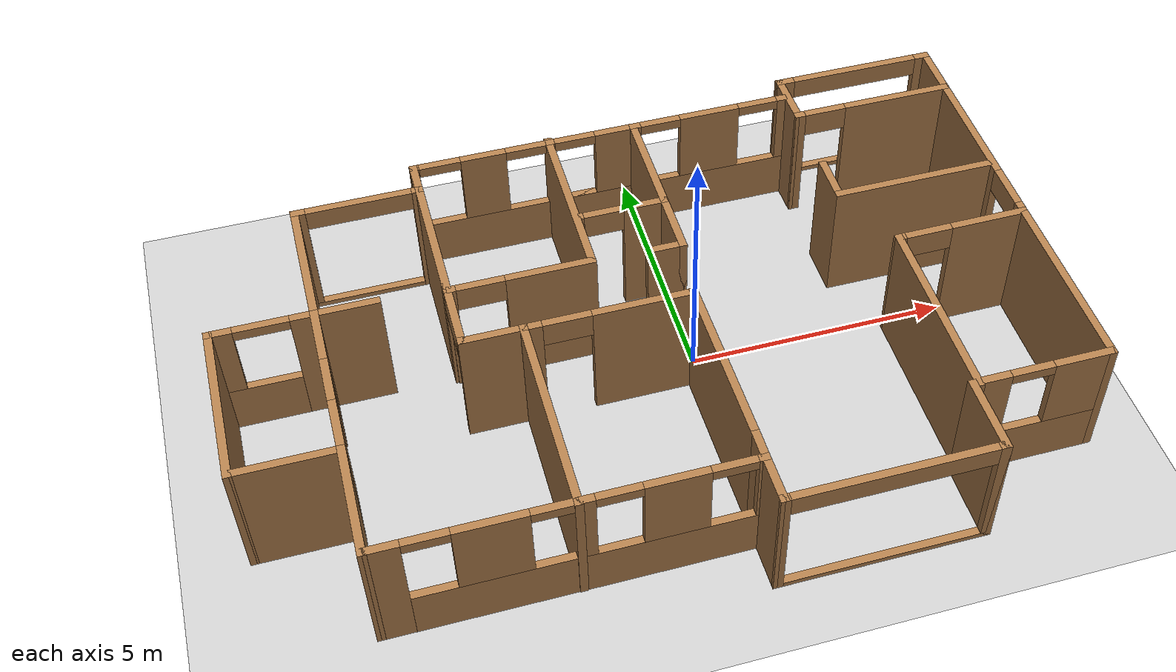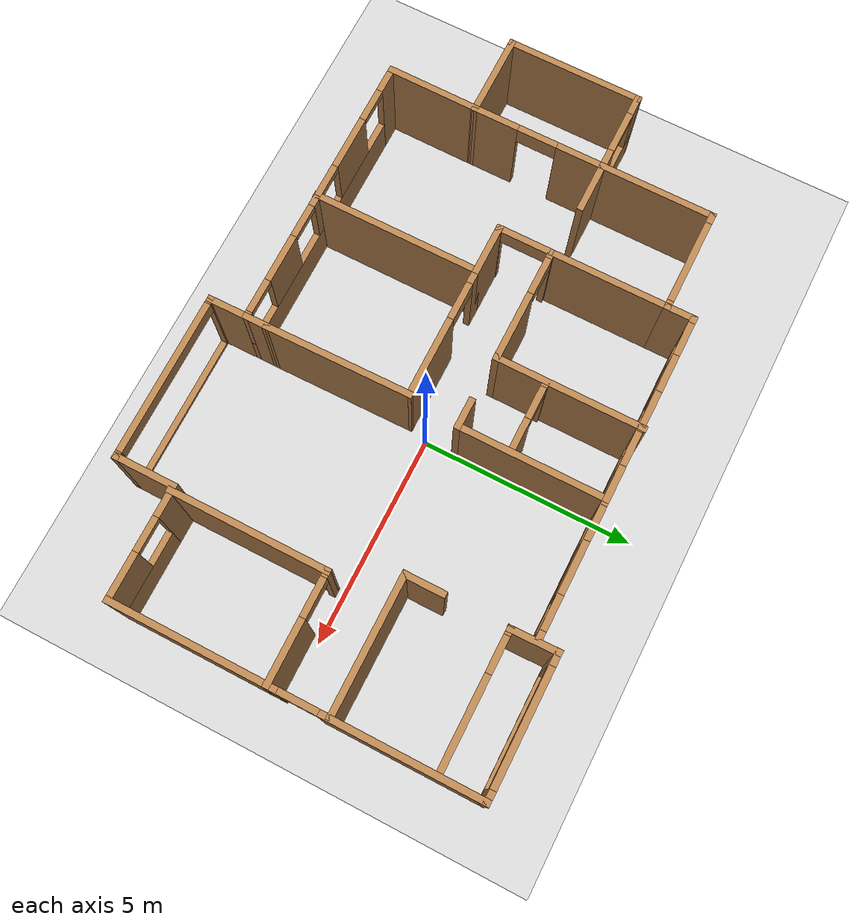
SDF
<sdf version="1.7">
 <world name="default">
  <model name="ground_plane">
   <static>1</static>
   <link name="link">
    <collision name="collision">
     <geometry><plane><normal>0 0 1</normal><size>100 100</size></plane></geometry>
     <surface>
      <contact><collide_bitmask>65535</collide_bitmask></contact>
      <friction><ode><mu>100</mu><mu2>50</mu2></ode></friction>
     </surface>
    </collision>
    <visual name="visual">
     <cast_shadows>0</cast_shadows>
     <geometry><plane><normal>0 0 1</normal><size>100 100</size></plane></geometry>
     <material>
      <script><uri>file://media/materials/scripts/gazebo.material</uri><name>Gazebo/Grey</name></script>
     </material>
    </visual>
   </link>
  </model>
  <model name="home_1">
   <pose>-1.13065 -0.318162 0 0 -0 0</pose>
   <link name="Wall_1">
    <collision name="Wall_1_Collision">
     <geometry><box><size>3.25 0.15 2.5</size></box></geometry>
     <pose>0 0 1.25 0 -0 0</pose>
    </collision>
    <visual name="Wall_1_Visual">
     <pose>0 0 1.25 0 -0 0</pose>
     <geometry><box><size>3.25 0.15 2.5</size></box></geometry>
     <material>
      <script><uri>file://media/materials/scripts/gazebo.material</uri><name>Gazebo/Wood</name></script>
      <ambient>0.188235 0.188235 0.188235 1</ambient>
     </material>
     <meta><layer>0</layer></meta>
    </visual>
    <pose>-7.4437 -0.353578 0 0 -0 -1.5708</pose>
   </link>
   <link name="Wall_16">
    <collision name="Wall_16_Collision">
     <geometry><box><size>0.637 0.15 2.5</size></box></geometry>
     <pose>0 0 1.25 0 -0 0</pose>
    </collision>
    <visual name="Wall_16_Visual">
     <pose>0 0 1.25 0 -0 0</pose>
     <geometry><box><size>0.637 0.15 2.5</size></box></geometry>
     <material>
      <script><uri>file://media/materials/scripts/gazebo.material</uri><name>Gazebo/Wood</name></script>
      <ambient>1 1 1 1</ambient>
     </material>
     <meta><layer>0</layer></meta>
    </visual>
    <pose>0.998311 -3.74683 0 0 -0 1.5708</pose>
   </link>
   <link name="Wall_2">
    <collision name="Wall_2_Collision">
     <geometry><box><size>2 0.15 2.5</size></box></geometry>
     <pose>0 0 1.25 0 -0 0</pose>
    </collision>
    <visual name="Wall_2_Visual">
     <pose>0 0 1.25 0 -0 0</pose>
     <geometry><box><size>2 0.15 2.5</size></box></geometry>
     <material>
      <script><uri>file://media/materials/scripts/gazebo.material</uri><name>Gazebo/Wood</name></script>
      <ambient>0.188235 0.188235 0.188235 1</ambient>
     </material>
     <meta><layer>0</layer></meta>
    </visual>
    <pose>-6.51869 -1.90346 0 0 -0 0.000132</pose>
   </link>
   <link name="Wall_20">
    <pose>-5.59369 -0.353333 0 0 -0 1.5708</pose>
    <visual name="Wall_20_Visual_0">
     <pose>-1.05414 0 1.25 0 -0 0</pose>
     <geometry><box><size>1.14172 0.15 2.5</size></box></geometry>
     <material>
      <script><uri>file://media/materials/scripts/gazebo.material</uri><name>Gazebo/Wood</name></script>
      <ambient>0.188235 0.188235 0.188235 1</ambient>
     </material>
     <meta><layer>0</layer></meta>
    </visual>
    <collision name="Wall_20_Collision_0">
     <geometry><box><size>1.14172 0.15 2.5</size></box></geometry>
     <pose>-1.05414 0 1.25 0 -0 0</pose>
    </collision>
    <visual name="Wall_20_Visual_1">
     <pose>1.0407 0 1.25 0 -0 0</pose>
     <geometry><box><size>1.1686 0.15 2.5</size></box></geometry>
     <material>
      <script><uri>file://media/materials/scripts/gazebo.material</uri><name>Gazebo/Wood</name></script>
      <ambient>0.188235 0.188235 0.188235 1</ambient>
     </material>
     <meta><layer>0</layer></meta>
    </visual>
    <collision name="Wall_20_Collision_1">
     <geometry><box><size>1.1686 0.15 2.5</size></box></geometry>
     <pose>1.0407 0 1.25 0 -0 0</pose>
    </collision>
    <visual name="Wall_20_Visual_2">
     <pose>-0.01344 0 2.25 0 -0 0</pose>
     <geometry><box><size>0.939675 0.15 0.5</size></box></geometry>
     <material>
      <script><uri>file://media/materials/scripts/gazebo.material</uri><name>Gazebo/Wood</name></script>
      <ambient>0.188235 0.188235 0.188235 1</ambient>
     </material>
     <meta><layer>0</layer></meta>
    </visual>
    <collision name="Wall_20_Collision_2">
     <geometry><box><size>0.939675 0.15 0.5</size></box></geometry>
     <pose>-0.01344 0 2.25 0 -0 0</pose>
    </collision>
   </link>
   <link name="Wall_21">
    <pose>-6.51869 1.19654 0 0 -0 -3.14146</pose>
    <visual name="Wall_21_Visual_0">
     <pose>-0.744697 0 1.25 0 -0 0</pose>
     <geometry><box><size>0.510607 0.15 2.5</size></box></geometry>
     <material>
      <script><uri>file://media/materials/scripts/gazebo.material</uri><name>Gazebo/Wood</name></script>
      <ambient>0.188235 0.188235 0.188235 1</ambient>
     </material>
     <meta><layer>0</layer></meta>
    </visual>
    <collision name="Wall_21_Collision_0">
     <geometry><box><size>0.510607 0.15 2.5</size></box></geometry>
     <pose>-0.744697 0 1.25 0 -0 0</pose>
    </collision>
    <visual name="Wall_21_Visual_1">
     <pose>0.255303 0 0.5 0 -0 0</pose>
     <geometry><box><size>1.48939 0.15 1</size></box></geometry>
     <material>
      <script><uri>file://media/materials/scripts/gazebo.material</uri><name>Gazebo/Wood</name></script>
      <ambient>0.188235 0.188235 0.188235 1</ambient>
     </material>
     <meta><layer>0</layer></meta>
    </visual>
    <collision name="Wall_21_Collision_1">
     <geometry><box><size>1.48939 0.15 1</size></box></geometry>
     <pose>0.255303 0 0.5 0 -0 0</pose>
    </collision>
    <visual name="Wall_21_Visual_2">
     <pose>0.755303 0 1.75 0 -0 0</pose>
     <geometry><box><size>0.489393 0.15 1.5</size></box></geometry>
     <material>
      <script><uri>file://media/materials/scripts/gazebo.material</uri><name>Gazebo/Wood</name></script>
      <ambient>0.188235 0.188235 0.188235 1</ambient>
     </material>
     <meta><layer>0</layer></meta>
    </visual>
    <collision name="Wall_21_Collision_2">
     <geometry><box><size>0.489393 0.15 1.5</size></box></geometry>
     <pose>0.755303 0 1.75 0 -0 0</pose>
    </collision>
    <visual name="Wall_21_Visual_3">
     <pose>0.010607 0 2.4 0 -0 0</pose>
     <geometry><box><size>1 0.15 0.2</size></box></geometry>
     <material>
      <script><uri>file://media/materials/scripts/gazebo.material</uri><name>Gazebo/Wood</name></script>
      <ambient>0.188235 0.188235 0.188235 1</ambient>
     </material>
     <meta><layer>0</layer></meta>
    </visual>
    <collision name="Wall_21_Collision_3">
     <geometry><box><size>1 0.15 0.2</size></box></geometry>
     <pose>0.010607 0 2.4 0 -0 0</pose>
    </collision>
   </link>
   <link name="Wall_24">
    <collision name="Wall_24_Collision">
     <geometry><box><size>2.75 0.15 2.5</size></box></geometry>
     <pose>0 0 1.25 0 -0 0</pose>
    </collision>
    <visual name="Wall_24_Visual">
     <pose>0 0 1.25 0 -0 0</pose>
     <geometry><box><size>2.75 0.15 2.5</size></box></geometry>
     <material>
      <script><uri>file://media/materials/scripts/gazebo.material</uri><name>Gazebo/Wood</name></script>
      <ambient>1 1 1 1</ambient>
     </material>
     <meta><layer>0</layer></meta>
    </visual>
    <pose>-3.2437 2.49642 0 0 -0 1.5708</pose>
   </link>
   <link name="Wall_25">
    <pose>-4.4187 3.79642 0 0 -0 3.14159</pose>
    <visual name="Wall_25_Visual_0">
     <pose>-1.13657 0 1.25 0 -0 0</pose>
     <geometry><box><size>0.22686 0.15 2.5</size></box></geometry>
     <material>
      <script><uri>file://media/materials/scripts/gazebo.material</uri><name>Gazebo/Wood</name></script>
      <ambient>1 1 1 1</ambient>
     </material>
     <meta><layer>0</layer></meta>
    </visual>
    <collision name="Wall_25_Collision_0">
     <geometry><box><size>0.22686 0.15 2.5</size></box></geometry>
     <pose>-1.13657 0 1.25 0 -0 0</pose>
    </collision>
    <visual name="Wall_25_Visual_1">
     <pose>0.11343 0 0.05 0 -0 0</pose>
     <geometry><box><size>2.27314 0.15 0.1</size></box></geometry>
     <material>
      <script><uri>file://media/materials/scripts/gazebo.material</uri><name>Gazebo/Wood</name></script>
      <ambient>1 1 1 1</ambient>
     </material>
     <meta><layer>0</layer></meta>
    </visual>
    <collision name="Wall_25_Collision_1">
     <geometry><box><size>2.27314 0.15 0.1</size></box></geometry>
     <pose>0.11343 0 0.05 0 -0 0</pose>
    </collision>
    <visual name="Wall_25_Visual_2">
     <pose>1.11343 0 1.3 0 -0 0</pose>
     <geometry><box><size>0.27314 0.15 2.4</size></box></geometry>
     <material>
      <script><uri>file://media/materials/scripts/gazebo.material</uri><name>Gazebo/Wood</name></script>
      <ambient>1 1 1 1</ambient>
     </material>
     <meta><layer>0</layer></meta>
    </visual>
    <collision name="Wall_25_Collision_2">
     <geometry><box><size>0.27314 0.15 2.4</size></box></geometry>
     <pose>1.11343 0 1.3 0 -0 0</pose>
    </collision>
    <visual name="Wall_25_Visual_3">
     <pose>-0.02314 0 2.3 0 -0 0</pose>
     <geometry><box><size>2 0.15 0.4</size></box></geometry>
     <material>
      <script><uri>file://media/materials/scripts/gazebo.material</uri><name>Gazebo/Wood</name></script>
      <ambient>1 1 1 1</ambient>
     </material>
     <meta><layer>0</layer></meta>
    </visual>
    <collision name="Wall_25_Collision_3">
     <geometry><box><size>2 0.15 0.4</size></box></geometry>
     <pose>-0.02314 0 2.3 0 -0 0</pose>
    </collision>
   </link>
   <link name="Wall_26">
    <collision name="Wall_26_Collision">
     <geometry><box><size>2.74975 0.15 2.5</size></box></geometry>
     <pose>0 0 1.25 0 -0 0</pose>
    </collision>
    <visual name="Wall_26_Visual">
     <pose>0 0 1.25 0 -0 0</pose>
     <geometry><box><size>2.74975 0.15 2.5</size></box></geometry>
     <material>
      <script><uri>file://media/materials/scripts/gazebo.material</uri><name>Gazebo/Wood</name></script>
      <ambient>1 1 1 1</ambient>
     </material>
     <meta><layer>0</layer></meta>
    </visual>
    <pose>-5.59369 2.49654 0 0 -0 -1.57079</pose>
   </link>
   <link name="Wall_28">
    <pose>-3.2437 0.521422 0 0 -0 -1.5708</pose>
    <visual name="Wall_28_Visual_0">
     <pose>-0.634712 0 1.25 0 -0 0</pose>
     <geometry><box><size>0.230576 0.15 2.5</size></box></geometry>
     <material>
      <script><uri>file://media/materials/scripts/gazebo.material</uri><name>Gazebo/Wood</name></script>
      <ambient>1 1 1 1</ambient>
     </material>
     <meta><layer>0</layer></meta>
    </visual>
    <collision name="Wall_28_Collision_0">
     <geometry><box><size>0.230576 0.15 2.5</size></box></geometry>
     <pose>-0.634712 0 1.25 0 -0 0</pose>
    </collision>
    <visual name="Wall_28_Visual_1">
     <pose>0.670228 0 1.25 0 -0 0</pose>
     <geometry><box><size>0.159543 0.15 2.5</size></box></geometry>
     <material>
      <script><uri>file://media/materials/scripts/gazebo.material</uri><name>Gazebo/Wood</name></script>
      <ambient>1 1 1 1</ambient>
     </material>
     <meta><layer>0</layer></meta>
    </visual>
    <collision name="Wall_28_Collision_1">
     <geometry><box><size>0.159543 0.15 2.5</size></box></geometry>
     <pose>0.670228 0 1.25 0 -0 0</pose>
    </collision>
    <visual name="Wall_28_Visual_2">
     <pose>0.035516 0 2.25 0 -0 0</pose>
     <geometry><box><size>1.10988 0.15 0.5</size></box></geometry>
     <material>
      <script><uri>file://media/materials/scripts/gazebo.material</uri><name>Gazebo/Wood</name></script>
      <ambient>1 1 1 1</ambient>
     </material>
     <meta><layer>0</layer></meta>
    </visual>
    <collision name="Wall_28_Collision_2">
     <geometry><box><size>1.10988 0.15 0.5</size></box></geometry>
     <pose>0.035516 0 2.25 0 -0 0</pose>
    </collision>
   </link>
   <link name="Wall_29">
    <collision name="Wall_29_Collision">
     <geometry><box><size>1.25 0.15 2.5</size></box></geometry>
     <pose>0 0 1.25 0 -0 0</pose>
    </collision>
    <visual name="Wall_29_Visual">
     <pose>0 0 1.25 0 -0 0</pose>
     <geometry><box><size>1.25 0.15 2.5</size></box></geometry>
     <material>
      <script><uri>file://media/materials/scripts/gazebo.material</uri><name>Gazebo/Wood</name></script>
      <ambient>1 1 1 1</ambient>
     </material>
     <meta><layer>0</layer></meta>
    </visual>
    <pose>-2.6937 -0.153578 0 0 -0 0</pose>
   </link>
   <link name="Wall_3">
    <collision name="Wall_3_Collision">
     <geometry><box><size>2.23704 0.15 2.5</size></box></geometry>
     <pose>0 0 1.25 0 -0 0</pose>
    </collision>
    <visual name="Wall_3_Visual">
     <pose>0 0 1.25 0 -0 0</pose>
     <geometry><box><size>2.23704 0.15 2.5</size></box></geometry>
     <material>
      <script><uri>file://media/materials/scripts/gazebo.material</uri><name>Gazebo/Wood</name></script>
      <ambient>1 1 1 1</ambient>
     </material>
     <meta><layer>0</layer></meta>
    </visual>
    <pose>-5.60019 -2.94683 0 0 -0 -1.57702</pose>
   </link>
   <link name="Wall_31">
    <collision name="Wall_31_Collision">
     <geometry><box><size>4 0.15 2.5</size></box></geometry>
     <pose>0 0 1.25 0 -0 0</pose>
    </collision>
    <visual name="Wall_31_Visual">
     <pose>0 0 1.25 0 -0 0</pose>
     <geometry><box><size>4 0.15 2.5</size></box></geometry>
     <material>
      <script><uri>file://media/materials/scripts/gazebo.material</uri><name>Gazebo/Wood</name></script>
      <ambient>1 1 1 1</ambient>
     </material>
     <meta><layer>0</layer></meta>
    </visual>
    <pose>-2.1437 -2.07858 0 0 -0 -1.5708</pose>
   </link>
   <link name="Wall_33">
    <pose>-0.593697 -0.153578 0 0 -0 0</pose>
    <visual name="Wall_33_Visual_0">
     <pose>-1.42431 0 1.25 0 -0 0</pose>
     <geometry><box><size>0.401373 0.15 2.5</size></box></geometry>
     <material>
      <script><uri>file://media/materials/scripts/gazebo.material</uri><name>Gazebo/Wood</name></script>
      <ambient>1 1 1 1</ambient>
     </material>
     <meta><layer>0</layer></meta>
    </visual>
    <collision name="Wall_33_Collision_0">
     <geometry><box><size>0.401373 0.15 2.5</size></box></geometry>
     <pose>-1.42431 0 1.25 0 -0 0</pose>
    </collision>
    <visual name="Wall_33_Visual_1">
     <pose>0.650686 0 1.25 0 -0 0</pose>
     <geometry><box><size>1.94863 0.15 2.5</size></box></geometry>
     <material>
      <script><uri>file://media/materials/scripts/gazebo.material</uri><name>Gazebo/Wood</name></script>
      <ambient>1 1 1 1</ambient>
     </material>
     <meta><layer>0</layer></meta>
    </visual>
    <collision name="Wall_33_Collision_1">
     <geometry><box><size>1.94863 0.15 2.5</size></box></geometry>
     <pose>0.650686 0 1.25 0 -0 0</pose>
    </collision>
    <visual name="Wall_33_Visual_2">
     <pose>-0.773627 0 2.25 0 -0 0</pose>
     <geometry><box><size>0.9 0.15 0.5</size></box></geometry>
     <material>
      <script><uri>file://media/materials/scripts/gazebo.material</uri><name>Gazebo/Wood</name></script>
      <ambient>1 1 1 1</ambient>
     </material>
     <meta><layer>0</layer></meta>
    </visual>
    <collision name="Wall_33_Collision_2">
     <geometry><box><size>0.9 0.15 0.5</size></box></geometry>
     <pose>-0.773627 0 2.25 0 -0 0</pose>
    </collision>
   </link>
   <link name="Wall_34">
    <collision name="Wall_34_Collision">
     <geometry><box><size>3.50002 0.15 2.5</size></box></geometry>
     <pose>0 0 1.25 0 -0 0</pose>
    </collision>
    <visual name="Wall_34_Visual">
     <pose>0 0 1.25 0 -0 0</pose>
     <geometry><box><size>3.50002 0.15 2.5</size></box></geometry>
     <material>
      <script><uri>file://media/materials/scripts/gazebo.material</uri><name>Gazebo/Wood</name></script>
      <ambient>1 1 1 1</ambient>
     </material>
     <meta><layer>0</layer></meta>
    </visual>
    <pose>0.977307 -1.82846 0 0 -0 -1.55826</pose>
   </link>
   <link name="Wall_36">
    <collision name="Wall_36_Collision">
     <geometry><box><size>3.75 0.15 2.5</size></box></geometry>
     <pose>0 0 1.25 0 -0 0</pose>
    </collision>
    <visual name="Wall_36_Visual">
     <pose>0 0 1.25 0 -0 0</pose>
     <geometry><box><size>3.75 0.15 2.5</size></box></geometry>
     <material>
      <script><uri>file://media/materials/scripts/gazebo.material</uri><name>Gazebo/Wood</name></script>
      <ambient>1 1 1 1</ambient>
     </material>
     <meta><layer>0</layer></meta>
    </visual>
    <pose>4.96022 -1.71642 0 0 -0 -1.57085</pose>
   </link>
   <link name="Wall_38">
    <pose>6.20181 0.090167 0 0 -0 0.005236</pose>
    <visual name="Wall_38_Visual_0">
     <pose>-1.21235 0 1.25 0 -0 0</pose>
     <geometry><box><size>0.208334 0.15 2.5</size></box></geometry>
     <material>
      <script><uri>file://media/materials/scripts/gazebo.material</uri><name>Gazebo/Wood</name></script>
      <ambient>1 1 1 1</ambient>
     </material>
     <meta><layer>0</layer></meta>
    </visual>
    <collision name="Wall_38_Collision_0">
     <geometry><box><size>0.208334 0.15 2.5</size></box></geometry>
     <pose>-1.21235 0 1.25 0 -0 0</pose>
    </collision>
    <visual name="Wall_38_Visual_1">
     <pose>0.554167 0 1.25 0 -0 0</pose>
     <geometry><box><size>1.5247 0.15 2.5</size></box></geometry>
     <material>
      <script><uri>file://media/materials/scripts/gazebo.material</uri><name>Gazebo/Wood</name></script>
      <ambient>1 1 1 1</ambient>
     </material>
     <meta><layer>0</layer></meta>
    </visual>
    <collision name="Wall_38_Collision_1">
     <geometry><box><size>1.5247 0.15 2.5</size></box></geometry>
     <pose>0.554167 0 1.25 0 -0 0</pose>
    </collision>
    <visual name="Wall_38_Visual_2">
     <pose>-0.658183 0 2.25 0 -0 0</pose>
     <geometry><box><size>0.9 0.15 0.5</size></box></geometry>
     <material>
      <script><uri>file://media/materials/scripts/gazebo.material</uri><name>Gazebo/Wood</name></script>
      <ambient>1 1 1 1</ambient>
     </material>
     <meta><layer>0</layer></meta>
    </visual>
    <collision name="Wall_38_Collision_2">
     <geometry><box><size>0.9 0.15 0.5</size></box></geometry>
     <pose>-0.658183 0 2.25 0 -0 0</pose>
    </collision>
   </link>
   <link name="Wall_4">
    <pose>-2.30419 -3.99033 0 0 -0 0</pose>
    <visual name="Wall_4_Visual_0">
     <pose>-3.04337 0 1.25 0 -0 0</pose>
     <geometry><box><size>0.668937 0.15 2.5</size></box></geometry>
     <material>
      <script><uri>file://media/materials/scripts/gazebo.material</uri><name>Gazebo/Wood</name></script>
      <ambient>1 1 1 1</ambient>
     </material>
     <meta><layer>0</layer></meta>
    </visual>
    <collision name="Wall_4_Collision_0">
     <geometry><box><size>0.668937 0.15 2.5</size></box></geometry>
     <pose>-3.04337 0 1.25 0 -0 0</pose>
    </collision>
    <visual name="Wall_4_Visual_1">
     <pose>0.334469 0 0.5 0 -0 0</pose>
     <geometry><box><size>6.08674 0.15 1</size></box></geometry>
     <material>
      <script><uri>file://media/materials/scripts/gazebo.material</uri><name>Gazebo/Wood</name></script>
      <ambient>1 1 1 1</ambient>
     </material>
     <meta><layer>0</layer></meta>
    </visual>
    <collision name="Wall_4_Collision_1">
     <geometry><box><size>6.08674 0.15 1</size></box></geometry>
     <pose>0.334469 0 0.5 0 -0 0</pose>
    </collision>
    <visual name="Wall_4_Visual_2">
     <pose>-1.26803 0 1.75 0 -0 0</pose>
     <geometry><box><size>1.28175 0.15 1.5</size></box></geometry>
     <material>
      <script><uri>file://media/materials/scripts/gazebo.material</uri><name>Gazebo/Wood</name></script>
      <ambient>1 1 1 1</ambient>
     </material>
     <meta><layer>0</layer></meta>
    </visual>
    <collision name="Wall_4_Collision_2">
     <geometry><box><size>1.28175 0.15 1.5</size></box></geometry>
     <pose>-1.26803 0 1.75 0 -0 0</pose>
    </collision>
    <visual name="Wall_4_Visual_3">
     <pose>0.304856 0 1.75 0 -0 0</pose>
     <geometry><box><size>0.264008 0.15 1.5</size></box></geometry>
     <material>
      <script><uri>file://media/materials/scripts/gazebo.material</uri><name>Gazebo/Wood</name></script>
      <ambient>1 1 1 1</ambient>
     </material>
     <meta><layer>0</layer></meta>
    </visual>
    <collision name="Wall_4_Collision_3">
     <geometry><box><size>0.264008 0.15 1.5</size></box></geometry>
     <pose>0.304856 0 1.75 0 -0 0</pose>
    </collision>
    <visual name="Wall_4_Visual_4">
     <pose>1.80835 0 1.75 0 -0 0</pose>
     <geometry><box><size>1.14297 0.15 1.5</size></box></geometry>
     <material>
      <script><uri>file://media/materials/scripts/gazebo.material</uri><name>Gazebo/Wood</name></script>
      <ambient>1 1 1 1</ambient>
     </material>
     <meta><layer>0</layer></meta>
    </visual>
    <collision name="Wall_4_Collision_4">
     <geometry><box><size>1.14297 0.15 1.5</size></box></geometry>
     <pose>1.80835 0 1.75 0 -0 0</pose>
    </collision>
    <visual name="Wall_4_Visual_5">
     <pose>3.27884 0 1.75 0 -0 0</pose>
     <geometry><box><size>0.19801 0.15 1.5</size></box></geometry>
     <material>
      <script><uri>file://media/materials/scripts/gazebo.material</uri><name>Gazebo/Wood</name></script>
      <ambient>1 1 1 1</ambient>
     </material>
     <meta><layer>0</layer></meta>
    </visual>
    <collision name="Wall_4_Collision_5">
     <geometry><box><size>0.19801 0.15 1.5</size></box></geometry>
     <pose>3.27884 0 1.75 0 -0 0</pose>
    </collision>
    <visual name="Wall_4_Visual_6">
     <pose>-2.3089 0 2.4 0 -0 0</pose>
     <geometry><box><size>0.8 0.15 0.2</size></box></geometry>
     <material>
      <script><uri>file://media/materials/scripts/gazebo.material</uri><name>Gazebo/Wood</name></script>
      <ambient>1 1 1 1</ambient>
     </material>
     <meta><layer>0</layer></meta>
    </visual>
    <collision name="Wall_4_Collision_6">
     <geometry><box><size>0.8 0.15 0.2</size></box></geometry>
     <pose>-2.3089 0 2.4 0 -0 0</pose>
    </collision>
    <visual name="Wall_4_Visual_7">
     <pose>-0.227149 0 2.4 0 -0 0</pose>
     <geometry><box><size>0.8 0.15 0.2</size></box></geometry>
     <material>
      <script><uri>file://media/materials/scripts/gazebo.material</uri><name>Gazebo/Wood</name></script>
      <ambient>1 1 1 1</ambient>
     </material>
     <meta><layer>0</layer></meta>
    </visual>
    <collision name="Wall_4_Collision_7">
     <geometry><box><size>0.8 0.15 0.2</size></box></geometry>
     <pose>-0.227149 0 2.4 0 -0 0</pose>
    </collision>
    <visual name="Wall_4_Visual_8">
     <pose>0.83686 0 2.4 0 -0 0</pose>
     <geometry><box><size>0.8 0.15 0.2</size></box></geometry>
     <material>
      <script><uri>file://media/materials/scripts/gazebo.material</uri><name>Gazebo/Wood</name></script>
      <ambient>1 1 1 1</ambient>
     </material>
     <meta><layer>0</layer></meta>
    </visual>
    <collision name="Wall_4_Collision_8">
     <geometry><box><size>0.8 0.15 0.2</size></box></geometry>
     <pose>0.83686 0 2.4 0 -0 0</pose>
    </collision>
    <visual name="Wall_4_Visual_9">
     <pose>2.77983 0 2.4 0 -0 0</pose>
     <geometry><box><size>0.8 0.15 0.2</size></box></geometry>
     <material>
      <script><uri>file://media/materials/scripts/gazebo.material</uri><name>Gazebo/Wood</name></script>
      <ambient>1 1 1 1</ambient>
     </material>
     <meta><layer>0</layer></meta>
    </visual>
    <collision name="Wall_4_Collision_9">
     <geometry><box><size>0.8 0.15 0.2</size></box></geometry>
     <pose>2.77983 0 2.4 0 -0 0</pose>
    </collision>
   </link>
   <link name="Wall_40">
    <collision name="Wall_40_Collision">
     <geometry><box><size>0.75 0.15 2.5</size></box></geometry>
     <pose>0 0 1.25 0 -0 0</pose>
    </collision>
    <visual name="Wall_40_Visual">
     <pose>0 0 1.25 0 -0 0</pose>
     <geometry><box><size>0.75 0.15 2.5</size></box></geometry>
     <material>
      <script><uri>file://media/materials/scripts/gazebo.material</uri><name>Gazebo/Wood</name></script>
      <ambient>1 1 1 1</ambient>
     </material>
     <meta><layer>0</layer></meta>
    </visual>
    <pose>-3.2437 4.09642 0 0 -0 1.5708</pose>
   </link>
   <link name="Wall_41">
    <pose>-1.0687 4.39642 0 0 -0 0</pose>
    <visual name="Wall_41_Visual_0">
     <pose>-2.16041 0 1.25 0 -0 0</pose>
     <geometry><box><size>0.179184 0.15 2.5</size></box></geometry>
     <material>
      <script><uri>file://media/materials/scripts/gazebo.material</uri><name>Gazebo/Wood</name></script>
      <ambient>1 1 1 1</ambient>
     </material>
     <meta><layer>0</layer></meta>
    </visual>
    <collision name="Wall_41_Collision_0">
     <geometry><box><size>0.179184 0.15 2.5</size></box></geometry>
     <pose>-2.16041 0 1.25 0 -0 0</pose>
    </collision>
    <visual name="Wall_41_Visual_1">
     <pose>0.089592 0 0.5 0 -0 0</pose>
     <geometry><box><size>4.32082 0.15 1</size></box></geometry>
     <material>
      <script><uri>file://media/materials/scripts/gazebo.material</uri><name>Gazebo/Wood</name></script>
      <ambient>1 1 1 1</ambient>
     </material>
     <meta><layer>0</layer></meta>
    </visual>
    <collision name="Wall_41_Collision_1">
     <geometry><box><size>4.32082 0.15 1</size></box></geometry>
     <pose>0.089592 0 0.5 0 -0 0</pose>
    </collision>
    <visual name="Wall_41_Visual_2">
     <pose>-0.826549 0 1.75 0 -0 0</pose>
     <geometry><box><size>0.888534 0.15 1.5</size></box></geometry>
     <material>
      <script><uri>file://media/materials/scripts/gazebo.material</uri><name>Gazebo/Wood</name></script>
      <ambient>1 1 1 1</ambient>
     </material>
     <meta><layer>0</layer></meta>
    </visual>
    <collision name="Wall_41_Collision_2">
     <geometry><box><size>0.888534 0.15 1.5</size></box></geometry>
     <pose>-0.826549 0 1.75 0 -0 0</pose>
    </collision>
    <visual name="Wall_41_Visual_3">
     <pose>0.503461 0 1.75 0 -0 0</pose>
     <geometry><box><size>0.171485 0.15 1.5</size></box></geometry>
     <material>
      <script><uri>file://media/materials/scripts/gazebo.material</uri><name>Gazebo/Wood</name></script>
      <ambient>1 1 1 1</ambient>
     </material>
     <meta><layer>0</layer></meta>
    </visual>
    <collision name="Wall_41_Collision_3">
     <geometry><box><size>0.171485 0.15 1.5</size></box></geometry>
     <pose>0.503461 0 1.75 0 -0 0</pose>
    </collision>
    <visual name="Wall_41_Visual_4">
     <pose>1.8196 0 1.75 0 -0 0</pose>
     <geometry><box><size>0.860796 0.15 1.5</size></box></geometry>
     <material>
      <script><uri>file://media/materials/scripts/gazebo.material</uri><name>Gazebo/Wood</name></script>
      <ambient>1 1 1 1</ambient>
     </material>
     <meta><layer>0</layer></meta>
    </visual>
    <collision name="Wall_41_Collision_4">
     <geometry><box><size>0.860796 0.15 1.5</size></box></geometry>
     <pose>1.8196 0 1.75 0 -0 0</pose>
    </collision>
    <visual name="Wall_41_Visual_5">
     <pose>0.989204 0 1 0 -0 0</pose>
     <geometry><box><size>0.8 0.15 0</size></box></geometry>
     <material>
      <script><uri>file://media/materials/scripts/gazebo.material</uri><name>Gazebo/Wood</name></script>
      <ambient>1 1 1 1</ambient>
     </material>
     <meta><layer>0</layer></meta>
    </visual>
    <collision name="Wall_41_Collision_5">
     <geometry><box><size>0.8 0.15 0</size></box></geometry>
     <pose>0.989204 0 1 0 -0 0</pose>
    </collision>
    <visual name="Wall_41_Visual_6">
     <pose>-1.67082 0 2.4 0 -0 0</pose>
     <geometry><box><size>0.8 0.15 0.2</size></box></geometry>
     <material>
      <script><uri>file://media/materials/scripts/gazebo.material</uri><name>Gazebo/Wood</name></script>
      <ambient>1 1 1 1</ambient>
     </material>
     <meta><layer>0</layer></meta>
    </visual>
    <collision name="Wall_41_Collision_6">
     <geometry><box><size>0.8 0.15 0.2</size></box></geometry>
     <pose>-1.67082 0 2.4 0 -0 0</pose>
    </collision>
    <visual name="Wall_41_Visual_7">
     <pose>0.017718 0 2.4 0 -0 0</pose>
     <geometry><box><size>0.8 0.15 0.2</size></box></geometry>
     <material>
      <script><uri>file://media/materials/scripts/gazebo.material</uri><name>Gazebo/Wood</name></script>
      <ambient>1 1 1 1</ambient>
     </material>
     <meta><layer>0</layer></meta>
    </visual>
    <collision name="Wall_41_Collision_7">
     <geometry><box><size>0.8 0.15 0.2</size></box></geometry>
     <pose>0.017718 0 2.4 0 -0 0</pose>
    </collision>
    <visual name="Wall_41_Visual_8">
     <pose>0.989204 0 2.4 0 -0 0</pose>
     <geometry><box><size>0.8 0.15 0.2</size></box></geometry>
     <material>
      <script><uri>file://media/materials/scripts/gazebo.material</uri><name>Gazebo/Wood</name></script>
      <ambient>1 1 1 1</ambient>
     </material>
     <meta><layer>0</layer></meta>
    </visual>
    <collision name="Wall_41_Collision_8">
     <geometry><box><size>0.8 0.15 0.2</size></box></geometry>
     <pose>0.989204 0 2.4 0 -0 0</pose>
    </collision>
   </link>
   <link name="Wall_42">
    <collision name="Wall_42_Collision">
     <geometry><box><size>3.5 0.15 2.5</size></box></geometry>
     <pose>0 0 1.25 0 -0 0</pose>
    </collision>
    <visual name="Wall_42_Visual">
     <pose>0 0 1.25 0 -0 0</pose>
     <geometry><box><size>3.5 0.15 2.5</size></box></geometry>
     <material>
      <script><uri>file://media/materials/scripts/gazebo.material</uri><name>Gazebo/Wood</name></script>
      <ambient>0.188235 0.188235 0.188235 1</ambient>
     </material>
     <meta><layer>0</layer></meta>
    </visual>
    <pose>1.1063 2.72142 0 0 -0 -1.5708</pose>
   </link>
   <link name="Wall_43">
    <collision name="Wall_43_Collision">
     <geometry><box><size>0.75 0.15 2.5</size></box></geometry>
     <pose>0 0 1.25 0 -0 0</pose>
    </collision>
    <visual name="Wall_43_Visual">
     <pose>0 0 1.25 0 -0 0</pose>
     <geometry><box><size>0.75 0.15 2.5</size></box></geometry>
     <material>
      <script><uri>file://media/materials/scripts/gazebo.material</uri><name>Gazebo/Wood</name></script>
      <ambient>1 1 1 1</ambient>
     </material>
     <meta><layer>0</layer></meta>
    </visual>
    <pose>0.806303 1.04642 0 0 -0 3.14159</pose>
   </link>
   <link name="Wall_45">
    <collision name="Wall_45_Collision">
     <geometry><box><size>3.5 0.15 2.5</size></box></geometry>
     <pose>0 0 1.25 0 -0 0</pose>
    </collision>
    <visual name="Wall_45_Visual">
     <pose>0 0 1.25 0 -0 0</pose>
     <geometry><box><size>3.5 0.15 2.5</size></box></geometry>
     <material>
      <script><uri>file://media/materials/scripts/gazebo.material</uri><name>Gazebo/Wood</name></script>
      <ambient>0.188235 0.188235 0.188235 1</ambient>
     </material>
     <meta><layer>0</layer></meta>
    </visual>
    <pose>-0.586575 2.7685 0 0 -0 -1.5708</pose>
   </link>
   <link name="Wall_46">
    <pose>-1.88657 1.0935 0 0 -0 3.14159</pose>
    <visual name="Wall_46_Visual_0">
     <pose>-0.532292 0 1.25 0 -0 0</pose>
     <geometry><box><size>1.68542 0.15 2.5</size></box></geometry>
     <material>
      <script><uri>file://media/materials/scripts/gazebo.material</uri><name>Gazebo/Wood</name></script>
      <ambient>1 1 1 1</ambient>
     </material>
     <meta><layer>0</layer></meta>
    </visual>
    <collision name="Wall_46_Collision_0">
     <geometry><box><size>1.68542 0.15 2.5</size></box></geometry>
     <pose>-0.532292 0 1.25 0 -0 0</pose>
    </collision>
    <visual name="Wall_46_Visual_1">
     <pose>1.29271 0 1.25 0 -0 0</pose>
     <geometry><box><size>0.164584 0.15 2.5</size></box></geometry>
     <material>
      <script><uri>file://media/materials/scripts/gazebo.material</uri><name>Gazebo/Wood</name></script>
      <ambient>1 1 1 1</ambient>
     </material>
     <meta><layer>0</layer></meta>
    </visual>
    <collision name="Wall_46_Collision_1">
     <geometry><box><size>0.164584 0.15 2.5</size></box></geometry>
     <pose>1.29271 0 1.25 0 -0 0</pose>
    </collision>
    <visual name="Wall_46_Visual_2">
     <pose>0.760416 0 2.25 0 -0 0</pose>
     <geometry><box><size>0.9 0.15 0.5</size></box></geometry>
     <material>
      <script><uri>file://media/materials/scripts/gazebo.material</uri><name>Gazebo/Wood</name></script>
      <ambient>1 1 1 1</ambient>
     </material>
     <meta><layer>0</layer></meta>
    </visual>
    <collision name="Wall_46_Collision_2">
     <geometry><box><size>0.9 0.15 0.5</size></box></geometry>
     <pose>0.760416 0 2.25 0 -0 0</pose>
    </collision>
   </link>
   <link name="Wall_48">
    <pose>0.293425 2.24349 0 0 -0 0</pose>
    <visual name="Wall_48_Visual_0">
     <pose>-0.810522 0 1.25 0 -0 0</pose>
     <geometry><box><size>0.128956 0.15 2.5</size></box></geometry>
     <material>
      <script><uri>file://media/materials/scripts/gazebo.material</uri><name>Gazebo/Wood</name></script>
      <ambient>0.188235 0.188235 0.188235 1</ambient>
     </material>
     <meta><layer>0</layer></meta>
    </visual>
    <collision name="Wall_48_Collision_0">
     <geometry><box><size>0.128956 0.15 2.5</size></box></geometry>
     <pose>-0.810522 0 1.25 0 -0 0</pose>
    </collision>
    <visual name="Wall_48_Visual_1">
     <pose>0.444518 0 1.25 0 -0 0</pose>
     <geometry><box><size>0.860964 0.15 2.5</size></box></geometry>
     <material>
      <script><uri>file://media/materials/scripts/gazebo.material</uri><name>Gazebo/Wood</name></script>
      <ambient>0.188235 0.188235 0.188235 1</ambient>
     </material>
     <meta><layer>0</layer></meta>
    </visual>
    <collision name="Wall_48_Collision_1">
     <geometry><box><size>0.860964 0.15 2.5</size></box></geometry>
     <pose>0.444518 0 1.25 0 -0 0</pose>
    </collision>
    <visual name="Wall_48_Visual_2">
     <pose>-0.366004 0 2.25 0 -0 0</pose>
     <geometry><box><size>0.76008 0.15 0.5</size></box></geometry>
     <material>
      <script><uri>file://media/materials/scripts/gazebo.material</uri><name>Gazebo/Wood</name></script>
      <ambient>0.188235 0.188235 0.188235 1</ambient>
     </material>
     <meta><layer>0</layer></meta>
    </visual>
    <collision name="Wall_48_Collision_2">
     <geometry><box><size>0.76008 0.15 0.5</size></box></geometry>
     <pose>-0.366004 0 2.25 0 -0 0</pose>
    </collision>
   </link>
   <link name="Wall_5">
    <collision name="Wall_5_Collision">
     <geometry><box><size>1.01328 0.15 2.5</size></box></geometry>
     <pose>0 0 1.25 0 -0 0</pose>
    </collision>
    <visual name="Wall_5_Visual">
     <pose>0 0 1.25 0 -0 0</pose>
     <geometry><box><size>1.01328 0.15 2.5</size></box></geometry>
     <material>
      <script><uri>file://media/materials/scripts/gazebo.material</uri><name>Gazebo/Wood</name></script>
      <ambient>1 1 1 1</ambient>
     </material>
     <meta><layer>0</layer></meta>
    </visual>
    <pose>1.00231 -4.42196 0 0 -0 -1.56154</pose>
   </link>
   <link name="Wall_50">
    <pose>2.6563 4.39642 0 0 -0 0</pose>
    <visual name="Wall_50_Visual_0">
     <pose>-1.513 0 1.25 0 -0 0</pose>
     <geometry><box><size>0.223999 0.15 2.5</size></box></geometry>
     <material>
      <script><uri>file://media/materials/scripts/gazebo.material</uri><name>Gazebo/Wood</name></script>
      <ambient>1 1 1 1</ambient>
     </material>
     <meta><layer>0</layer></meta>
    </visual>
    <collision name="Wall_50_Collision_0">
     <geometry><box><size>0.223999 0.15 2.5</size></box></geometry>
     <pose>-1.513 0 1.25 0 -0 0</pose>
    </collision>
    <visual name="Wall_50_Visual_1">
     <pose>0.112 0 0.5 0 -0 0</pose>
     <geometry><box><size>3.026 0.15 1</size></box></geometry>
     <material>
      <script><uri>file://media/materials/scripts/gazebo.material</uri><name>Gazebo/Wood</name></script>
      <ambient>1 1 1 1</ambient>
     </material>
     <meta><layer>0</layer></meta>
    </visual>
    <collision name="Wall_50_Collision_1">
     <geometry><box><size>3.026 0.15 1</size></box></geometry>
     <pose>0.112 0 0.5 0 -0 0</pose>
    </collision>
    <visual name="Wall_50_Visual_2">
     <pose>0.00518 0 1.75 0 -0 0</pose>
     <geometry><box><size>1.21236 0.15 1.5</size></box></geometry>
     <material>
      <script><uri>file://media/materials/scripts/gazebo.material</uri><name>Gazebo/Wood</name></script>
      <ambient>1 1 1 1</ambient>
     </material>
     <meta><layer>0</layer></meta>
    </visual>
    <collision name="Wall_50_Collision_2">
     <geometry><box><size>1.21236 0.15 1.5</size></box></geometry>
     <pose>0.00518 0 1.75 0 -0 0</pose>
    </collision>
    <visual name="Wall_50_Visual_3">
     <pose>1.51818 0 1.75 0 -0 0</pose>
     <geometry><box><size>0.213638 0.15 1.5</size></box></geometry>
     <material>
      <script><uri>file://media/materials/scripts/gazebo.material</uri><name>Gazebo/Wood</name></script>
      <ambient>1 1 1 1</ambient>
     </material>
     <meta><layer>0</layer></meta>
    </visual>
    <collision name="Wall_50_Collision_3">
     <geometry><box><size>0.213638 0.15 1.5</size></box></geometry>
     <pose>1.51818 0 1.75 0 -0 0</pose>
    </collision>
    <visual name="Wall_50_Visual_4">
     <pose>-1.001 0 2.4 0 -0 0</pose>
     <geometry><box><size>0.8 0.15 0.2</size></box></geometry>
     <material>
      <script><uri>file://media/materials/scripts/gazebo.material</uri><name>Gazebo/Wood</name></script>
      <ambient>1 1 1 1</ambient>
     </material>
     <meta><layer>0</layer></meta>
    </visual>
    <collision name="Wall_50_Collision_4">
     <geometry><box><size>0.8 0.15 0.2</size></box></geometry>
     <pose>-1.001 0 2.4 0 -0 0</pose>
    </collision>
    <visual name="Wall_50_Visual_5">
     <pose>1.01136 0 2.4 0 -0 0</pose>
     <geometry><box><size>0.8 0.15 0.2</size></box></geometry>
     <material>
      <script><uri>file://media/materials/scripts/gazebo.material</uri><name>Gazebo/Wood</name></script>
      <ambient>1 1 1 1</ambient>
     </material>
     <meta><layer>0</layer></meta>
    </visual>
    <collision name="Wall_50_Collision_5">
     <geometry><box><size>0.8 0.15 0.2</size></box></geometry>
     <pose>1.01136 0 2.4 0 -0 0</pose>
    </collision>
   </link>
   <link name="Wall_6">
    <pose>2.9313 -4.85358 0 0 -0 0</pose>
    <visual name="Wall_6_Visual_0">
     <pose>-1.90855 0 1.25 0 -0 0</pose>
     <geometry><box><size>0.182893 0.15 2.5</size></box></geometry>
     <material>
      <script><uri>file://media/materials/scripts/gazebo.material</uri><name>Gazebo/Wood</name></script>
      <ambient>1 1 1 1</ambient>
     </material>
     <meta><layer>0</layer></meta>
    </visual>
    <collision name="Wall_6_Collision_0">
     <geometry><box><size>0.182893 0.15 2.5</size></box></geometry>
     <pose>-1.90855 0 1.25 0 -0 0</pose>
    </collision>
    <visual name="Wall_6_Visual_1">
     <pose>0.091447 0 0.05 0 -0 0</pose>
     <geometry><box><size>3.81711 0.15 0.1</size></box></geometry>
     <material>
      <script><uri>file://media/materials/scripts/gazebo.material</uri><name>Gazebo/Wood</name></script>
      <ambient>1 1 1 1</ambient>
     </material>
     <meta><layer>0</layer></meta>
    </visual>
    <collision name="Wall_6_Collision_1">
     <geometry><box><size>3.81711 0.15 0.1</size></box></geometry>
     <pose>0.091447 0 0.05 0 -0 0</pose>
    </collision>
    <visual name="Wall_6_Visual_2">
     <pose>1.90348 0 1.3 0 -0 0</pose>
     <geometry><box><size>0.193045 0.15 2.4</size></box></geometry>
     <material>
      <script><uri>file://media/materials/scripts/gazebo.material</uri><name>Gazebo/Wood</name></script>
      <ambient>1 1 1 1</ambient>
     </material>
     <meta><layer>0</layer></meta>
    </visual>
    <collision name="Wall_6_Collision_2">
     <geometry><box><size>0.193045 0.15 2.4</size></box></geometry>
     <pose>1.90348 0 1.3 0 -0 0</pose>
    </collision>
    <visual name="Wall_6_Visual_3">
     <pose>-0.005076 0 2.3 0 -0 0</pose>
     <geometry><box><size>3.62406 0.15 0.4</size></box></geometry>
     <material>
      <script><uri>file://media/materials/scripts/gazebo.material</uri><name>Gazebo/Wood</name></script>
      <ambient>1 1 1 1</ambient>
     </material>
     <meta><layer>0</layer></meta>
    </visual>
    <collision name="Wall_6_Collision_3">
     <geometry><box><size>3.62406 0.15 0.4</size></box></geometry>
     <pose>-0.005076 0 2.3 0 -0 0</pose>
    </collision>
   </link>
   <link name="Wall_62">
    <pose>7.44331 0.681167 0 0 -0 1.5708</pose>
    <visual name="Wall_62_Visual_0">
     <pose>-2.30071 0 1.25 0 -0 0</pose>
     <geometry><box><size>3.89159 0.15 2.5</size></box></geometry>
     <material>
      <script><uri>file://media/materials/scripts/gazebo.material</uri><name>Gazebo/Wood</name></script>
      <ambient>1 1 1 1</ambient>
     </material>
     <meta><layer>0</layer></meta>
    </visual>
    <collision name="Wall_62_Collision_0">
     <geometry><box><size>3.89159 0.15 2.5</size></box></geometry>
     <pose>-2.30071 0 1.25 0 -0 0</pose>
    </collision>
    <visual name="Wall_62_Visual_1">
     <pose>2.40241 0 1.25 0 -0 0</pose>
     <geometry><box><size>3.68819 0.15 2.5</size></box></geometry>
     <material>
      <script><uri>file://media/materials/scripts/gazebo.material</uri><name>Gazebo/Wood</name></script>
      <ambient>1 1 1 1</ambient>
     </material>
     <meta><layer>0</layer></meta>
    </visual>
    <collision name="Wall_62_Collision_1">
     <geometry><box><size>3.68819 0.15 2.5</size></box></geometry>
     <pose>2.40241 0 1.25 0 -0 0</pose>
    </collision>
    <visual name="Wall_62_Visual_2">
     <pose>0.101699 0 2.25 0 -0 0</pose>
     <geometry><box><size>0.913225 0.15 0.5</size></box></geometry>
     <material>
      <script><uri>file://media/materials/scripts/gazebo.material</uri><name>Gazebo/Wood</name></script>
      <ambient>1 1 1 1</ambient>
     </material>
     <meta><layer>0</layer></meta>
    </visual>
    <collision name="Wall_62_Collision_2">
     <geometry><box><size>0.913225 0.15 0.5</size></box></geometry>
     <pose>0.101699 0 2.25 0 -0 0</pose>
    </collision>
   </link>
   <link name="Wall_64">
    <pose>5.87244 4.85261 0 0 -0 3.7e-05</pose>
    <visual name="Wall_64_Visual_0">
     <pose>-1.461 0 1.25 0 -0 0</pose>
     <geometry><box><size>0.369747 0.15 2.5</size></box></geometry>
     <material>
      <script><uri>file://media/materials/scripts/gazebo.material</uri><name>Gazebo/Wood</name></script>
      <ambient>1 1 1 1</ambient>
     </material>
     <meta><layer>0</layer></meta>
    </visual>
    <collision name="Wall_64_Collision_0">
     <geometry><box><size>0.369747 0.15 2.5</size></box></geometry>
     <pose>-1.461 0 1.25 0 -0 0</pose>
    </collision>
    <visual name="Wall_64_Visual_1">
     <pose>0.184873 0 0.05 0 -0 0</pose>
     <geometry><box><size>2.922 0.15 0.1</size></box></geometry>
     <material>
      <script><uri>file://media/materials/scripts/gazebo.material</uri><name>Gazebo/Wood</name></script>
      <ambient>1 1 1 1</ambient>
     </material>
     <meta><layer>0</layer></meta>
    </visual>
    <collision name="Wall_64_Collision_1">
     <geometry><box><size>2.922 0.15 0.1</size></box></geometry>
     <pose>0.184873 0 0.05 0 -0 0</pose>
    </collision>
    <visual name="Wall_64_Visual_2">
     <pose>1.48487 0 1.3 0 -0 0</pose>
     <geometry><box><size>0.322001 0.15 2.4</size></box></geometry>
     <material>
      <script><uri>file://media/materials/scripts/gazebo.material</uri><name>Gazebo/Wood</name></script>
      <ambient>1 1 1 1</ambient>
     </material>
     <meta><layer>0</layer></meta>
    </visual>
    <collision name="Wall_64_Collision_2">
     <geometry><box><size>0.322001 0.15 2.4</size></box></geometry>
     <pose>1.48487 0 1.3 0 -0 0</pose>
    </collision>
    <visual name="Wall_64_Visual_3">
     <pose>0.023873 0 2.3 0 -0 0</pose>
     <geometry><box><size>2.6 0.15 0.4</size></box></geometry>
     <material>
      <script><uri>file://media/materials/scripts/gazebo.material</uri><name>Gazebo/Wood</name></script>
      <ambient>1 1 1 1</ambient>
     </material>
     <meta><layer>0</layer></meta>
    </visual>
    <collision name="Wall_64_Collision_3">
     <geometry><box><size>2.6 0.15 0.4</size></box></geometry>
     <pose>0.023873 0 2.3 0 -0 0</pose>
    </collision>
   </link>
   <link name="Wall_68">
    <pose>5.87572 3.81139 0 0 -0 0</pose>
    <visual name="Wall_68_Visual_0">
     <pose>-1.51824 0 1.25 0 -0 0</pose>
     <geometry><box><size>0.213513 0.15 2.5</size></box></geometry>
     <material>
      <script><uri>file://media/materials/scripts/gazebo.material</uri><name>Gazebo/Wood</name></script>
      <ambient>0.333333 0.341176 0.32549 1</ambient>
     </material>
     <meta><layer>0</layer></meta>
    </visual>
    <collision name="Wall_68_Collision_0">
     <geometry><box><size>0.213513 0.15 2.5</size></box></geometry>
     <pose>-1.51824 0 1.25 0 -0 0</pose>
    </collision>
    <visual name="Wall_68_Visual_1">
     <pose>0.523694 0 1.25 0 -0 0</pose>
     <geometry><box><size>2.20261 0.15 2.5</size></box></geometry>
     <material>
      <script><uri>file://media/materials/scripts/gazebo.material</uri><name>Gazebo/Wood</name></script>
      <ambient>0.333333 0.341176 0.32549 1</ambient>
     </material>
     <meta><layer>0</layer></meta>
    </visual>
    <collision name="Wall_68_Collision_1">
     <geometry><box><size>2.20261 0.15 2.5</size></box></geometry>
     <pose>0.523694 0 1.25 0 -0 0</pose>
    </collision>
    <visual name="Wall_68_Visual_2">
     <pose>-0.99455 0 2.25 0 -0 0</pose>
     <geometry><box><size>0.833875 0.15 0.5</size></box></geometry>
     <material>
      <script><uri>file://media/materials/scripts/gazebo.material</uri><name>Gazebo/Wood</name></script>
      <ambient>0.333333 0.341176 0.32549 1</ambient>
     </material>
     <meta><layer>0</layer></meta>
    </visual>
    <collision name="Wall_68_Collision_2">
     <geometry><box><size>0.833875 0.15 0.5</size></box></geometry>
     <pose>-0.99455 0 2.25 0 -0 0</pose>
    </collision>
   </link>
   <link name="Wall_70">
    <collision name="Wall_70_Collision">
     <geometry><box><size>1.19144 0.15 2.5</size></box></geometry>
     <pose>0 0 1.25 0 -0 0</pose>
    </collision>
    <visual name="Wall_70_Visual">
     <pose>0 0 1.25 0 -0 0</pose>
     <geometry><box><size>1.19144 0.15 2.5</size></box></geometry>
     <material>
      <script><uri>file://media/materials/scripts/gazebo.material</uri><name>Gazebo/Wood</name></script>
      <ambient>1 1 1 1</ambient>
     </material>
     <meta><layer>0</layer></meta>
    </visual>
    <pose>4.31364 4.33197 0 0 -0 -1.5476</pose>
   </link>
   <link name="Wall_72">
    <collision name="Wall_72_Collision">
     <geometry><box><size>1 0.15 2.5</size></box></geometry>
     <pose>0 0 1.25 0 -0 0</pose>
    </collision>
    <visual name="Wall_72_Visual">
     <pose>0 0 1.25 0 -0 0</pose>
     <geometry><box><size>1 0.15 2.5</size></box></geometry>
     <material>
      <script><uri>file://media/materials/scripts/gazebo.material</uri><name>Gazebo/Wood</name></script>
      <ambient>0.188235 0.188235 0.188235 1</ambient>
     </material>
     <meta><layer>0</layer></meta>
    </visual>
    <pose>4.31249 1.90519 0 0 -0 -1.5708</pose>
   </link>
   <link name="Wall_73">
    <collision name="Wall_73_Collision">
     <geometry><box><size>3.25 0.15 2.5</size></box></geometry>
     <pose>0 0 1.25 0 -0 0</pose>
    </collision>
    <visual name="Wall_73_Visual">
     <pose>0 0 1.25 0 -0 0</pose>
     <geometry><box><size>3.25 0.15 2.5</size></box></geometry>
     <material>
      <script><uri>file://media/materials/scripts/gazebo.material</uri><name>Gazebo/Wood</name></script>
      <ambient>0.333333 0.341176 0.32549 1</ambient>
     </material>
     <meta><layer>0</layer></meta>
    </visual>
    <pose>5.86249 1.48019 0 0 -0 0</pose>
   </link>
   <link name="Wall_75">
    <collision name="Wall_75_Collision">
     <geometry><box><size>1.5 0.15 2.5</size></box></geometry>
     <pose>0 0 1.25 0 -0 0</pose>
    </collision>
    <visual name="Wall_75_Visual">
     <pose>0 0 1.25 0 -0 0</pose>
     <geometry><box><size>1.5 0.15 2.5</size></box></geometry>
     <material>
      <script><uri>file://media/materials/scripts/gazebo.material</uri><name>Gazebo/Wood</name></script>
      <ambient>1 1 1 1</ambient>
     </material>
     <meta><layer>0</layer></meta>
    </visual>
    <pose>4.8563 -4.17858 0 0 -0 1.5708</pose>
   </link>
   <link name="Wall_77">
    <collision name="Wall_77_Collision">
     <geometry><box><size>1.25 0.15 2.5</size></box></geometry>
     <pose>0 0 1.25 0 -0 0</pose>
    </collision>
    <visual name="Wall_77_Visual">
     <pose>0 0 1.25 0 -0 0</pose>
     <geometry><box><size>1.25 0.15 2.5</size></box></geometry>
     <material>
      <script><uri>file://media/materials/scripts/gazebo.material</uri><name>Gazebo/Wood</name></script>
      <ambient>1 1 1 1</ambient>
     </material>
     <meta><layer>0</layer></meta>
    </visual>
    <pose>-5.04369 1.19654 0 0 -0 -0.000223</pose>
   </link>
   <link name="Wall_8">
    <pose>6.26831 -3.49033 0 0 -0 0</pose>
    <visual name="Wall_8_Visual_0">
     <pose>-0.9771 0 1.25 0 -0 0</pose>
     <geometry><box><size>0.5458 0.15 2.5</size></box></geometry>
     <material>
      <script><uri>file://media/materials/scripts/gazebo.material</uri><name>Gazebo/Wood</name></script>
      <ambient>1 1 1 1</ambient>
     </material>
     <meta><layer>0</layer></meta>
    </visual>
    <collision name="Wall_8_Collision_0">
     <geometry><box><size>0.5458 0.15 2.5</size></box></geometry>
     <pose>-0.9771 0 1.25 0 -0 0</pose>
    </collision>
    <visual name="Wall_8_Visual_1">
     <pose>0.2729 0 0.5 0 -0 0</pose>
     <geometry><box><size>1.9542 0.15 1</size></box></geometry>
     <material>
      <script><uri>file://media/materials/scripts/gazebo.material</uri><name>Gazebo/Wood</name></script>
      <ambient>1 1 1 1</ambient>
     </material>
     <meta><layer>0</layer></meta>
    </visual>
    <collision name="Wall_8_Collision_1">
     <geometry><box><size>1.9542 0.15 1</size></box></geometry>
     <pose>0.2729 0 0.5 0 -0 0</pose>
    </collision>
    <visual name="Wall_8_Visual_2">
     <pose>0.6729 0 1.75 0 -0 0</pose>
     <geometry><box><size>1.1542 0.15 1.5</size></box></geometry>
     <material>
      <script><uri>file://media/materials/scripts/gazebo.material</uri><name>Gazebo/Wood</name></script>
      <ambient>1 1 1 1</ambient>
     </material>
     <meta><layer>0</layer></meta>
    </visual>
    <collision name="Wall_8_Collision_2">
     <geometry><box><size>1.1542 0.15 1.5</size></box></geometry>
     <pose>0.6729 0 1.75 0 -0 0</pose>
    </collision>
    <visual name="Wall_8_Visual_3">
     <pose>-0.3042 0 2.4 0 -0 0</pose>
     <geometry><box><size>0.8 0.15 0.2</size></box></geometry>
     <material>
      <script><uri>file://media/materials/scripts/gazebo.material</uri><name>Gazebo/Wood</name></script>
      <ambient>1 1 1 1</ambient>
     </material>
     <meta><layer>0</layer></meta>
    </visual>
    <collision name="Wall_8_Collision_3">
     <geometry><box><size>0.8 0.15 0.2</size></box></geometry>
     <pose>-0.3042 0 2.4 0 -0 0</pose>
    </collision>
   </link>
   <static>1</static>
  </model>
 </world>
</sdf>
